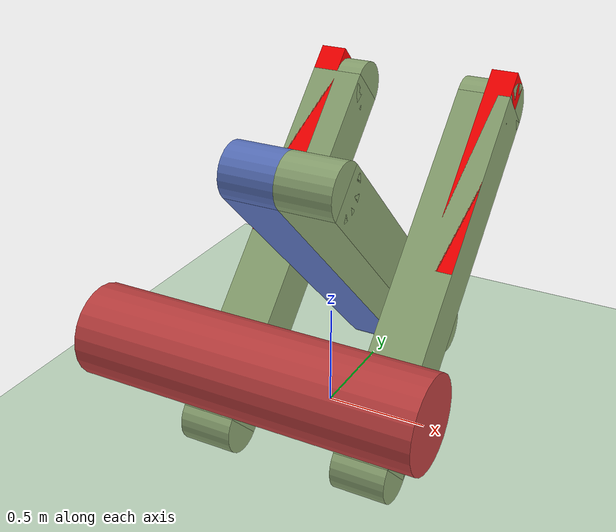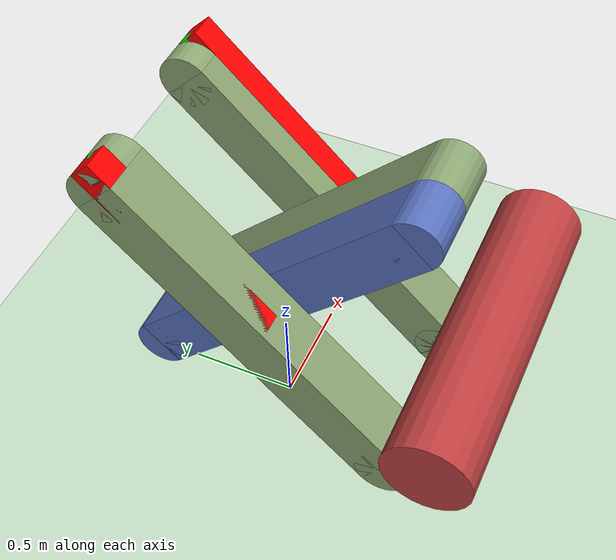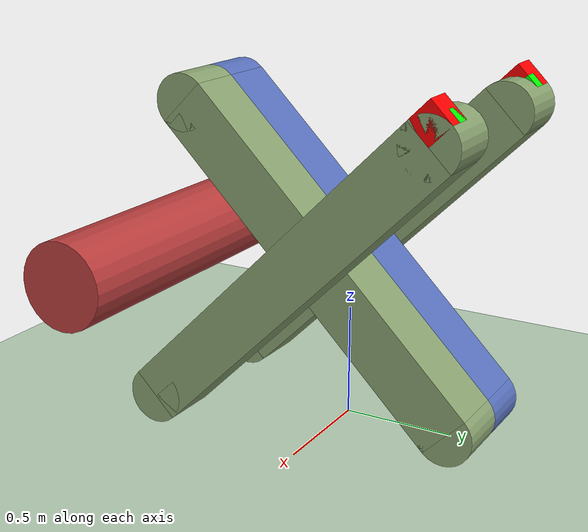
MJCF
<mujoco model="tars">

  <compiler angle="degree"/>

  <option timestep="0.001" integrator="RK4" gravity="0 0 -9.81"/>

  <default>
    <joint limited="true" damping="30" armature="0.05" stiffness="0" actuatorfrcrange="-400 400"/>
    <geom condim="3" friction="1.2 0.005 0.0001" density="100"
          contype="0" conaffinity="0"/>
    <motor ctrllimited="true" ctrlrange="-1 1" gear="120"/>
  </default>

  <worldbody>
    <light name="sun" pos="0 0 6" dir="0 0 -1" diffuse="1 1 1" specular="0.3 0.3 0.3"/>
    <geom name="floor" type="plane" size="50 50 0.1"
          rgba="0.75 0.85 0.75 1" contype="1" conaffinity="1"/>

    <!-- ── Middle Right ──────────────────────────────────────────────────────── -->
    <body name="middle_right" pos="0 0 0.8" euler="45 0 0">
      <freejoint name="root"/>
      <!-- Slot shape: central box + two half-cylinders capping the ±x ends -->
      <geom name="middle_geom_box" type="box" size="0.125 0.125 0.875"
             rgba="0.35 0.45 0.75 1"
             contype="1" conaffinity="0"/>
      <geom name="middle_geom_cap_pos" type="cylinder" pos="0 0 0.875"
            size="0.125 0.125" euler="0 90 0"
             rgba="0.35 0.45 0.75 1"
            contype="1" conaffinity="0"/>
      <geom name="middle_geom_cap_neg" type="cylinder" pos="0 0 -0.875"
            size="0.125 0.125" euler="0 90 0"
             rgba="0.35 0.45 0.75 1"
            contype="1" conaffinity="0"/>

      <!-- ── Middle Left ──────────────────────────────────────────── -->
      <!-- pos: 0.25 m to the left (-x) of middle_right              -->
      <!-- joint pos: +0.25 x in middle_left's frame = middle_right's center -->
      <body name="middle_left" pos="0.25 0 0" euler="0 0 0" >
        <joint name="ud_mm" type="slide" axis="0 0 1" range="-50 50"/>
        <joint name="r_mm" type="hinge" axis="1 0 0" pos="0 0 0" range="-355 355"/>
        <geom name="ml_geom_box" type="box" size="0.125 0.125 0.875"
               rgba="0.55 0.65 0.45 1"
               contype="1" conaffinity="0"/>
        <geom name="ml_geom_cap_pos" type="cylinder" pos="0 0 0.875"
              size="0.125 0.125" euler="0 90 0"
              rgba="0.55 0.65 0.45 1"
              contype="1" conaffinity="0"/>
        <geom name="ml_geom_cap_neg" type="cylinder" pos="0 0 -0.875"
              size="0.125 0.125" euler="0 90 0"
              rgba="0.55 0.65 0.45 1"
              contype="1" conaffinity="0"/>
      </body>

      <!-- ── Left ──────────────────────────────────────────── -->
      <!-- pos: 0.5 m to the left (-x) of middle_right              -->
      <!-- joint pos: +0.5 x in middle_left's frame = middle_right's center -->
      <body name="left" pos="0.5 0 0" euler="90 0 0" >
        <joint name="ud_lm" type="slide" axis="0 0 1" range="-50 50"/>
        <joint name="r_lm" type="hinge" axis="1 0 0" pos="0 0 0" range="-355 355"/>
        <geom name="l_geom_box" type="box" size="0.125 0.125 0.875"
               rgba="0.55 0.65 0.45 1"
               contype="1" conaffinity="0"/>
        <geom name="l_geom_cap_pos" type="cylinder" pos="0 0 0.875"
              size="0.125 0.125" euler="0 90 0"
              rgba="0.55 0.65 0.45 1"
              contype="1" conaffinity="0"/>
        <geom name="l_geom_cap_neg" type="cylinder" pos="0 0 -0.875"
              size="0.125 0.125" euler="0 90 0"
               rgba="0.55 0.65 0.45 1"
              contype="1" conaffinity="0"/>

        <!-- ── Left Arm Upper ──────────────────────────────────────────── -->
        <body name="left_arm_upper" pos="0.0625 0.0625 -0.5" euler="0 0 0" >
          <joint name="r_lu" type="hinge" axis="1 0 0" pos="0 0 0.5" range="-5 355" />
          <geom name="lu_geom_box" type="box" size="0.0625 0.0625 0.5"
              rgba="1 0 0 1"
              contype="1" conaffinity="0"/>
          <!-- ── Left Arm Lower ──────────────────────────────────────────── -->
          <body name="left_arm_lower" pos="-0.03125 -0.03125 -0.5" euler="0 0 0" >
            <joint name="r_ll" type="hinge" axis="1 0 0" pos="0 0 0" range="-5 355"/>
            <geom name="ll_geom_box" type="box" size="0.03125 0.03125 0.25"
                pos="0 0 0.25" rgba="0 1 0 1"
                contype="1" conaffinity="0"/>
          </body>

        </body>

      </body>

      <!-- ── Right ──────────────────────────────────────────── -->
      <!-- pos: 0.25 m to the right (-x) of middle_right              -->
      <!-- joint pos: -0.25 x in middle_left's frame = middle_right's center -->
      <body name="right" pos="-0.25 0 0" euler="90 0 0" >
        <joint name="ud_rm" type="slide" axis="0 0 1" range="-50 50"/>
        <joint name="r_rm" type="hinge" axis="1 0 0" pos="0 0 0" range="-355 355"/>
        <geom name="r_geom_box" type="box" size="0.125 0.125 0.875"
               rgba="0.55 0.65 0.45 1"
               contype="1" conaffinity="0"/>
        <geom name="r_geom_cap_pos" type="cylinder" pos="0 0 0.875"
              size="0.125 0.125" euler="0 90 0"
               rgba="0.55 0.65 0.45 1"
              contype="1" conaffinity="0"/>
        <geom name="r_geom_cap_neg" type="cylinder" pos="0 0 -0.875"
              size="0.125 0.125" euler="0 90 0"
              rgba="0.55 0.65 0.45 1"
              contype="1" conaffinity="0"/>

        <!-- ── Right Arm Upper ──────────────────────────────────────────── -->
        <body name="right_arm_upper" pos="-0.0625 0.0625 -0.5" euler="0 0 0" >
          <joint name="r_ru" type="hinge" axis="1 0 0" pos="0 0 0.5" range="-5 355"/>
          <geom name="ru_geom_box" type="box" size="0.0625 0.0625 0.5"
              rgba="1 0 0 1"
              contype="1" conaffinity="0"/>

          <!-- ── Right Arm Lower ──────────────────────────────────────────── -->
          <body name="right_arm_lower" pos="0.03125 -0.03125 -0.5" euler="0 0 0" >
            <joint name="r_rl" type="hinge" axis="1 0 0" pos="0 0 0" range="-5 355" />
            <geom name="rl_geom_box" type="box" size="0.03125 0.03125 0.25"
                pos="0 0 0.25" rgba="0 1 0 1"
                contype="1" conaffinity="0"/>
          </body>
        </body>
      </body>
    </body>

    <body name="barrel" pos="0.125 -0.9 0.7" euler="0 90 0">
      <freejoint name="barrel_root"/>
      <geom name="barrel_geom" type="cylinder" size="0.2 0.75" rgba="0.75 0.25 0.25 1"
            contype="2" conaffinity="1"/>
    </body>
  </worldbody>

  <keyframe>
    <key name="init" qpos="0 0 0.8 0.924 0.383 0 0 0 0 0 0 2.8 1.75 0 0 2.8 1.75 0.125 -0.9 0.7 0.707 0 0.707 0"/>
  </keyframe>

  <actuator>
    <position name="ud_lm_pos" joint="ud_lm" kp="0.5"  ctrlrange="-50 50"/>
    <position name="ud_mm_pos" joint="ud_mm" kp="0.5"  ctrlrange="-50 50"/>
    <position name="ud_rm_pos" joint="ud_rm" kp="0.5"  ctrlrange="-50 50"/>
    <position name="r_lm_pos" joint="r_lm" kp="0.5"  ctrlrange="-355 355"/>
    <position name="r_mm_pos" joint="r_mm" kp="0.5"  ctrlrange="-355 355"/>
    <position name="r_rm_pos" joint="r_rm" kp="0.5" ctrlrange="-355 355"/>
    <position name="r_lu_pos" joint="r_lu" kp="0.5"  ctrlrange="-5 355"/>
    <position name="r_ru_pos" joint="r_ru" kp="0.5"  ctrlrange="-5 355"/>
    <position name="r_ll_pos" joint="r_ll" kp="0.5"  ctrlrange="-5 355"/>
    <position name="r_rl_pos" joint="r_rl" kp="0.5"  ctrlrange="-5 355"/>
  </actuator>

</mujoco>
